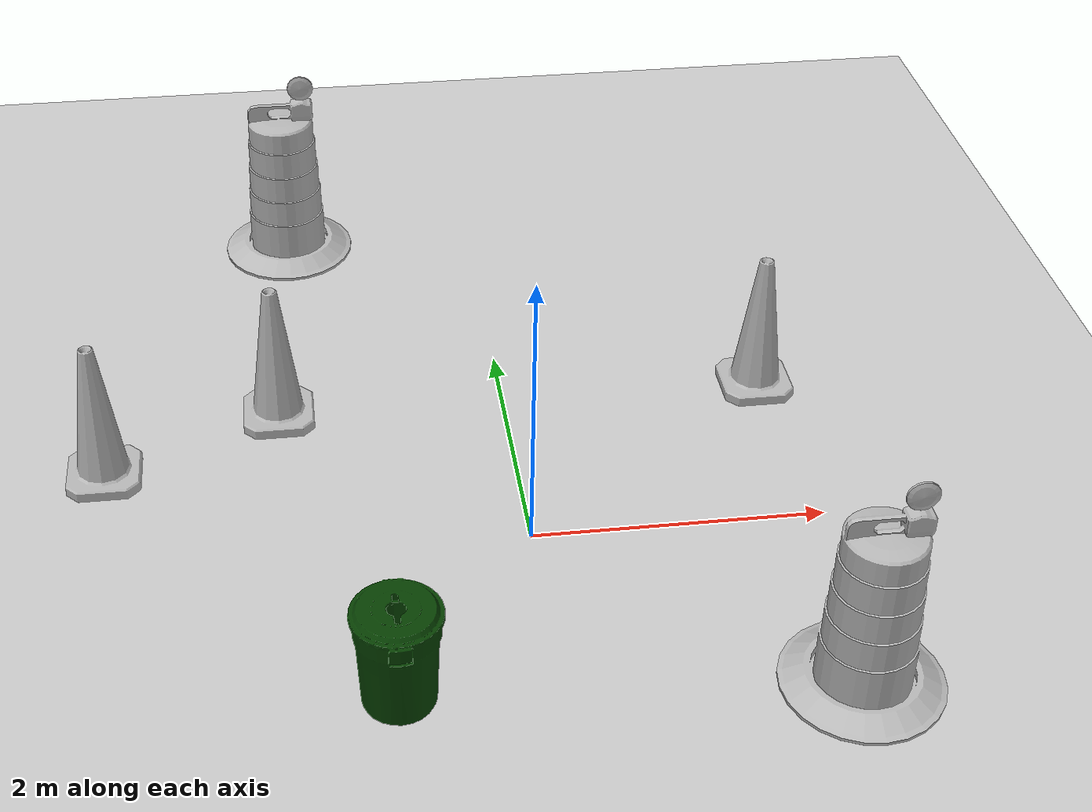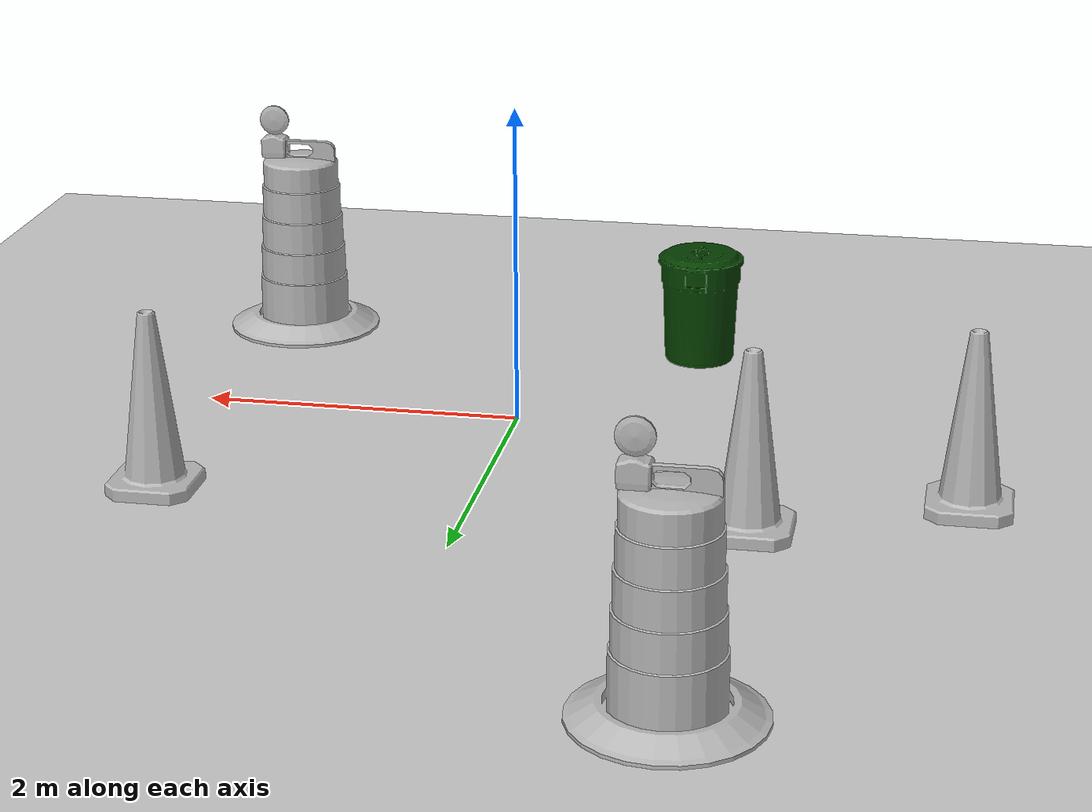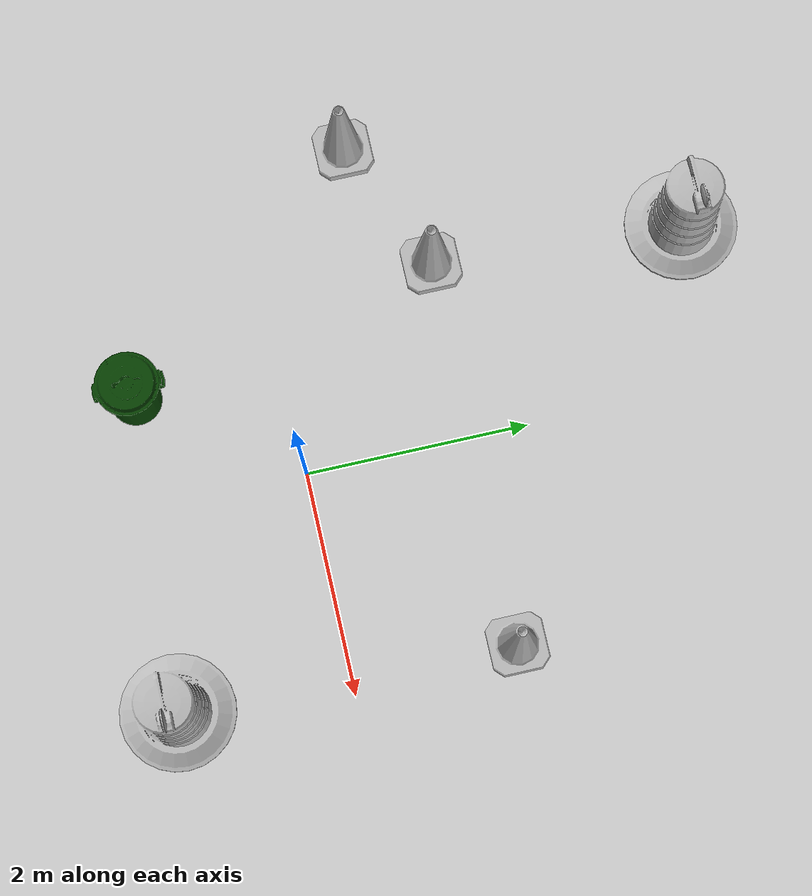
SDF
<sdf version="1.7">
 <world name="default">
  <light name="sun" type="directional">
   <pose>0 0 10 0 -0 0</pose>
   <diffuse>0.8 0.8 0.8 1</diffuse>
   <specular>0.2 0.2 0.2 1</specular>
   <attenuation>
    <range>1000</range>
    <constant>0.9</constant>
    <linear>0.01</linear>
    <quadratic>0.001</quadratic>
   </attenuation>
   <direction>-0.5 0.1 -0.9</direction>
   <spot><inner_angle>0</inner_angle><outer_angle>0</outer_angle><falloff>0</falloff></spot>
  </light>
  <model name="ground_plane">
   <static>1</static>
   <link name="link">
    <collision name="collision">
     <geometry><plane><normal>0 0 1</normal><size>100 100</size></plane></geometry>
     <surface><friction><ode><mu>100</mu><mu2>50</mu2></ode></friction></surface>
    </collision>
    <visual name="visual">
     <cast_shadows>0</cast_shadows>
     <geometry><plane><normal>0 0 1</normal><size>100 100</size></plane></geometry>
     <material>
      <script><uri>file://media/materials/scripts/gazebo.material</uri><name>Gazebo/Grey</name></script>
     </material>
    </visual>
   </link>
  </model>
  <gravity>0 0 -9.8</gravity>
  <magnetic_field>6e-06 2.3e-05 -4.2e-05</magnetic_field>
  <atmosphere type="adiabatic"/>
  <physics type="ode">
   <max_step_size>0.001</max_step_size>
   <real_time_factor>1</real_time_factor>
   <real_time_update_rate>1000</real_time_update_rate>
  </physics>
  <scene><ambient>0.4 0.4 0.4 1</ambient><background>0.7 0.7 0.7 1</background><shadows>1</shadows></scene>
  <audio><device>default</device></audio>
  <spherical_coordinates>
   <surface_model>EARTH_WGS84</surface_model>
   <latitude_deg>0</latitude_deg>
   <longitude_deg>0</longitude_deg>
   <elevation>0</elevation>
   <heading_deg>0</heading_deg>
  </spherical_coordinates>
  <model name="Construction Barrel">
   <link name="link">
    <inertial>
     <pose>0 0 0.4 0 -0 0</pose>
     <mass>500</mass>
     <inertia><ixx>51.2096</ixx><iyy>51.2096</iyy><izz>25</izz><ixy>0</ixy><ixz>0</ixz><iyz>0</iyz></inertia>
    </inertial>
    <collision name="collision">
     <geometry><mesh><uri>model://construction_barrel/meshes/construction_barrel.dae</uri></mesh></geometry>
    </collision>
    <visual name="visual">
     <geometry><mesh><uri>model://construction_barrel/meshes/construction_barrel.dae</uri></mesh></geometry>
    </visual>
   </link>
   <pose>1.79664 -1.5266 -2e-06 1e-06 8e-06 -1.8e-05</pose>
  </model>
  <model name="Construction Cone">
   <link name="link">
    <collision name="collision">
     <geometry>
      <mesh><scale>10 10 10</scale><uri>model://construction_cone/meshes/construction_cone.dae</uri></mesh>
     </geometry>
    </collision>
    <visual name="visual">
     <geometry>
      <mesh><scale>10 10 10</scale><uri>model://construction_cone/meshes/construction_cone.dae</uri></mesh>
     </geometry>
    </visual>
    <inertial>
     <inertia><ixx>1</ixx><ixy>0</ixy><ixz>0</ixz><iyy>1</iyy><iyz>0</iyz><izz>1</izz></inertia>
     <mass>1</mass>
    </inertial>
   </link>
   <pose>1.87519 1.46634 -0 0 -1e-06 0</pose>
  </model>
  <model name="Construction Barrel_0">
   <link name="link">
    <inertial>
     <pose>0 0 0.4 0 -0 0</pose>
     <mass>500</mass>
     <inertia><ixx>51.2096</ixx><iyy>51.2096</iyy><izz>25</izz><ixy>0</ixy><ixz>0</ixz><iyz>0</iyz></inertia>
    </inertial>
    <collision name="collision">
     <geometry><mesh><uri>model://construction_barrel/meshes/construction_barrel.dae</uri></mesh></geometry>
    </collision>
    <visual name="visual">
     <geometry><mesh><uri>model://construction_barrel/meshes/construction_barrel.dae</uri></mesh></geometry>
    </visual>
   </link>
   <pose>-1.47987 3.76878 -2e-06 -4e-06 7e-06 -2e-05</pose>
  </model>
  <model name="Construction Cone_0">
   <link name="link">
    <collision name="collision">
     <geometry>
      <mesh><scale>10 10 10</scale><uri>model://construction_cone/meshes/construction_cone.dae</uri></mesh>
     </geometry>
    </collision>
    <visual name="visual">
     <geometry>
      <mesh><scale>10 10 10</scale><uri>model://construction_cone/meshes/construction_cone.dae</uri></mesh>
     </geometry>
    </visual>
    <inertial>
     <inertia><ixx>1</ixx><ixy>0</ixy><ixz>0</ixz><iyy>1</iyy><iyz>0</iyz><izz>1</izz></inertia>
     <mass>1</mass>
    </inertial>
   </link>
   <pose>-2.83906 0.952951 -0 0 -0 0</pose>
  </model>
  <model name="Construction Cone_1">
   <link name="link">
    <collision name="collision">
     <geometry>
      <mesh><scale>10 10 10</scale><uri>model://construction_cone/meshes/construction_cone.dae</uri></mesh>
     </geometry>
    </collision>
    <visual name="visual">
     <geometry>
      <mesh><scale>10 10 10</scale><uri>model://construction_cone/meshes/construction_cone.dae</uri></mesh>
     </geometry>
    </visual>
    <inertial>
     <inertia><ixx>1</ixx><ixy>0</ixy><ixz>0</ixz><iyy>1</iyy><iyz>0</iyz><izz>1</izz></inertia>
     <mass>1</mass>
    </inertial>
   </link>
   <pose>-1.62487 1.49557 -0 0 -1e-06 0</pose>
  </model>
  <model name="first_2015_trash_can">
   <link name="link">
    <inertial>
     <pose>0 0 0.3683 0 -0 0</pose>
     <mass>4.83076</mass>
     <inertia>
      <ixx>0.281534</ixx>
      <ixy>0</ixy>
      <ixz>0</ixz>
      <iyy>0.281534</iyy>
      <iyz>0</iyz>
      <izz>0.126223</izz>
     </inertia>
    </inertial>
    <visual name="visual">
     <geometry><mesh><uri>model://first_2015_trash_can/meshes/trash_can.dae</uri></mesh></geometry>
    </visual>
    <collision name="collision">
     <geometry><mesh><uri>model://first_2015_trash_can/meshes/trash_can.dae</uri></mesh></geometry>
    </collision>
   </link>
   <pose>-0.981541 -1.33049 -2e-06 5e-06 1e-05 -0.000358</pose>
  </model>
 </world>
</sdf>
